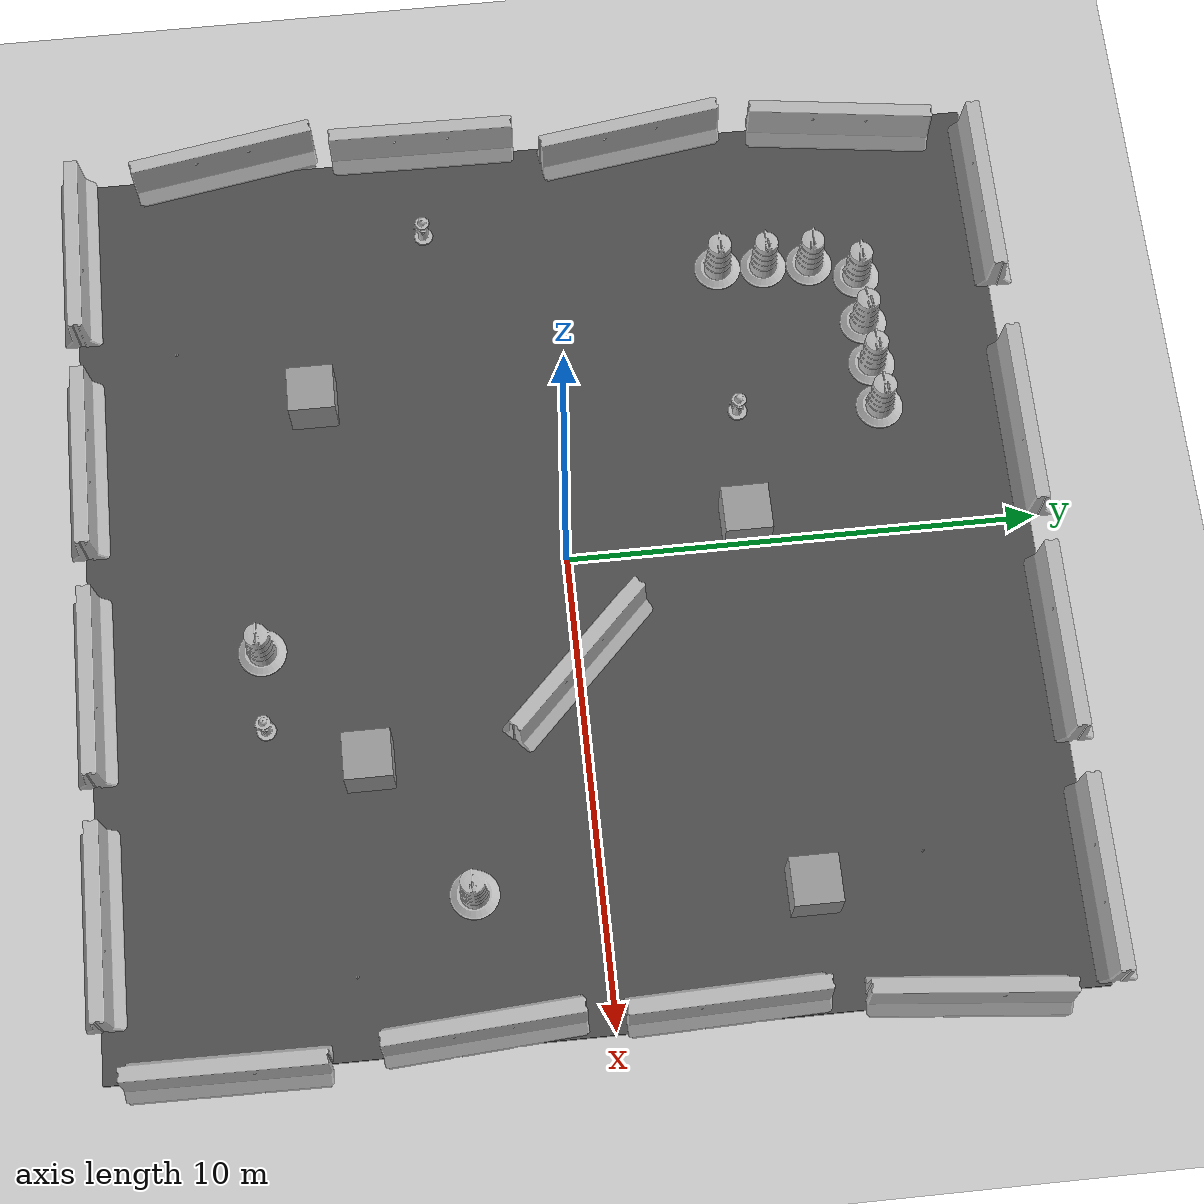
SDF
<sdf version="1.6">
 <world name="default">
  <light name="sun" type="directional">
   <pose>0 0 10 0 -0 0</pose>
   <diffuse>0.8 0.8 0.8 1</diffuse>
   <specular>0.2 0.2 0.2 1</specular>
   <attenuation>
    <range>1000</range>
    <constant>0.9</constant>
    <linear>0.01</linear>
    <quadratic>0.001</quadratic>
   </attenuation>
   <direction>-0.5 0.1 -0.9</direction>
  </light>
  <model name="ground_plane">
   <static>1</static>
   <link name="link">
    <collision name="collision">
     <geometry><plane><normal>0 0 1</normal><size>100 100</size></plane></geometry>
     <surface><friction><ode><mu>100</mu><mu2>50</mu2></ode></friction></surface>
    </collision>
    <visual name="visual">
     <cast_shadows>0</cast_shadows>
     <geometry><plane><normal>0 0 1</normal><size>100 100</size></plane></geometry>
     <material>
      <script><uri>file://media/materials/scripts/gazebo.material</uri><name>Gazebo/Grey</name></script>
     </material>
    </visual>
    <velocity_decay><linear>0</linear><angular>0</angular></velocity_decay>
   </link>
  </model>
  <physics name="default_physics" default="0" type="ode">
   <max_step_size>0.01</max_step_size>
   <real_time_factor>1</real_time_factor>
   <real_time_update_rate>100</real_time_update_rate>
  </physics>
  <scene><ambient>0.4 0.4 0.4 1</ambient><background>0.7 0.7 0.7 1</background><shadows>1</shadows></scene>
  <model name="jersey_barrier">
   <static>1</static>
   <link name="link">
    <visual name="visual">
     <geometry>
      <mesh><uri>model://jersey_barrier/meshes/jersey_barrier.dae</uri><scale>1 1 1</scale></mesh>
     </geometry>
    </visual>
    <collision name="upright">
     <pose>0 0 0.5715 0 -0 0</pose>
     <geometry><box><size>4.06542 0.3063 1.143</size></box></geometry>
    </collision>
    <collision name="base">
     <pose>0 0 0.032258 0 -0 0</pose>
     <geometry><box><size>4.06542 0.8107 0.064516</size></box></geometry>
    </collision>
    <collision name="base2">
     <pose>0 0 0.1 0 -0 0</pose>
     <geometry><box><size>4.06542 0.65 0.1</size></box></geometry>
    </collision>
    <collision name="base3">
     <pose>0 0 0.2 0 -0 0</pose>
     <geometry><box><size>4.06542 0.5 0.1</size></box></geometry>
    </collision>
    <collision name="left-angle">
     <pose>0 -0.224 0.2401 0.9 -0 0</pose>
     <geometry><box><size>4.06542 0.5 0.064516</size></box></geometry>
    </collision>
    <collision name="right-angle">
     <pose>0 0.224 0.2401 -0.9 0 0</pose>
     <geometry><box><size>4.06542 0.5 0.064516</size></box></geometry>
    </collision>
    <velocity_decay><linear>0</linear><angular>0</angular></velocity_decay>
   </link>
   <pose>-8 -10 0 0 -0 0</pose>
  </model>
  <model name="jersey_barrier_0">
   <static>1</static>
   <link name="link">
    <visual name="visual">
     <geometry>
      <mesh><uri>model://jersey_barrier/meshes/jersey_barrier.dae</uri><scale>1 1 1</scale></mesh>
     </geometry>
    </visual>
    <collision name="upright">
     <pose>0 0 0.5715 0 -0 0</pose>
     <geometry><box><size>4.06542 0.3063 1.143</size></box></geometry>
    </collision>
    <collision name="base">
     <pose>0 0 0.032258 0 -0 0</pose>
     <geometry><box><size>4.06542 0.8107 0.064516</size></box></geometry>
    </collision>
    <collision name="base2">
     <pose>0 0 0.1 0 -0 0</pose>
     <geometry><box><size>4.06542 0.65 0.1</size></box></geometry>
    </collision>
    <collision name="base3">
     <pose>0 0 0.2 0 -0 0</pose>
     <geometry><box><size>4.06542 0.5 0.1</size></box></geometry>
    </collision>
    <collision name="left-angle">
     <pose>0 -0.224 0.2401 0.9 -0 0</pose>
     <geometry><box><size>4.06542 0.5 0.064516</size></box></geometry>
    </collision>
    <collision name="right-angle">
     <pose>0 0.224 0.2401 -0.9 0 0</pose>
     <geometry><box><size>4.06542 0.5 0.064516</size></box></geometry>
    </collision>
    <velocity_decay><linear>0</linear><angular>0</angular></velocity_decay>
   </link>
   <pose>-3 -10 0 0 -0 0</pose>
  </model>
  <model name="jersey_barrier_1">
   <static>1</static>
   <link name="link">
    <visual name="visual">
     <geometry>
      <mesh><uri>model://jersey_barrier/meshes/jersey_barrier.dae</uri><scale>1 1 1</scale></mesh>
     </geometry>
    </visual>
    <collision name="upright">
     <pose>0 0 0.5715 0 -0 0</pose>
     <geometry><box><size>4.06542 0.3063 1.143</size></box></geometry>
    </collision>
    <collision name="base">
     <pose>0 0 0.032258 0 -0 0</pose>
     <geometry><box><size>4.06542 0.8107 0.064516</size></box></geometry>
    </collision>
    <collision name="base2">
     <pose>0 0 0.1 0 -0 0</pose>
     <geometry><box><size>4.06542 0.65 0.1</size></box></geometry>
    </collision>
    <collision name="base3">
     <pose>0 0 0.2 0 -0 0</pose>
     <geometry><box><size>4.06542 0.5 0.1</size></box></geometry>
    </collision>
    <collision name="left-angle">
     <pose>0 -0.224 0.2401 0.9 -0 0</pose>
     <geometry><box><size>4.06542 0.5 0.064516</size></box></geometry>
    </collision>
    <collision name="right-angle">
     <pose>0 0.224 0.2401 -0.9 0 0</pose>
     <geometry><box><size>4.06542 0.5 0.064516</size></box></geometry>
    </collision>
    <velocity_decay><linear>0</linear><angular>0</angular></velocity_decay>
   </link>
   <pose>2 -10 0 0 -0 0</pose>
  </model>
  <model name="jersey_barrier_2">
   <static>1</static>
   <link name="link">
    <visual name="visual">
     <geometry>
      <mesh><uri>model://jersey_barrier/meshes/jersey_barrier.dae</uri><scale>1 1 1</scale></mesh>
     </geometry>
    </visual>
    <collision name="upright">
     <pose>0 0 0.5715 0 -0 0</pose>
     <geometry><box><size>4.06542 0.3063 1.143</size></box></geometry>
    </collision>
    <collision name="base">
     <pose>0 0 0.032258 0 -0 0</pose>
     <geometry><box><size>4.06542 0.8107 0.064516</size></box></geometry>
    </collision>
    <collision name="base2">
     <pose>0 0 0.1 0 -0 0</pose>
     <geometry><box><size>4.06542 0.65 0.1</size></box></geometry>
    </collision>
    <collision name="base3">
     <pose>0 0 0.2 0 -0 0</pose>
     <geometry><box><size>4.06542 0.5 0.1</size></box></geometry>
    </collision>
    <collision name="left-angle">
     <pose>0 -0.224 0.2401 0.9 -0 0</pose>
     <geometry><box><size>4.06542 0.5 0.064516</size></box></geometry>
    </collision>
    <collision name="right-angle">
     <pose>0 0.224 0.2401 -0.9 0 0</pose>
     <geometry><box><size>4.06542 0.5 0.064516</size></box></geometry>
    </collision>
    <velocity_decay><linear>0</linear><angular>0</angular></velocity_decay>
   </link>
   <pose>7 -10 0 0 -0 0</pose>
  </model>
  <model name="jersey_barrier_3">
   <static>1</static>
   <link name="link">
    <visual name="visual">
     <geometry>
      <mesh><uri>model://jersey_barrier/meshes/jersey_barrier.dae</uri><scale>1 1 1</scale></mesh>
     </geometry>
    </visual>
    <collision name="upright">
     <pose>0 0 0.5715 0 -0 0</pose>
     <geometry><box><size>4.06542 0.3063 1.143</size></box></geometry>
    </collision>
    <collision name="base">
     <pose>0 0 0.032258 0 -0 0</pose>
     <geometry><box><size>4.06542 0.8107 0.064516</size></box></geometry>
    </collision>
    <collision name="base2">
     <pose>0 0 0.1 0 -0 0</pose>
     <geometry><box><size>4.06542 0.65 0.1</size></box></geometry>
    </collision>
    <collision name="base3">
     <pose>0 0 0.2 0 -0 0</pose>
     <geometry><box><size>4.06542 0.5 0.1</size></box></geometry>
    </collision>
    <collision name="left-angle">
     <pose>0 -0.224 0.2401 0.9 -0 0</pose>
     <geometry><box><size>4.06542 0.5 0.064516</size></box></geometry>
    </collision>
    <collision name="right-angle">
     <pose>0 0.224 0.2401 -0.9 0 0</pose>
     <geometry><box><size>4.06542 0.5 0.064516</size></box></geometry>
    </collision>
    <velocity_decay><linear>0</linear><angular>0</angular></velocity_decay>
   </link>
   <pose>-7.50675 10 0 0 -0 0</pose>
  </model>
  <model name="jersey_barrier_4">
   <static>1</static>
   <link name="link">
    <visual name="visual">
     <geometry>
      <mesh><uri>model://jersey_barrier/meshes/jersey_barrier.dae</uri><scale>1 1 1</scale></mesh>
     </geometry>
    </visual>
    <collision name="upright">
     <pose>0 0 0.5715 0 -0 0</pose>
     <geometry><box><size>4.06542 0.3063 1.143</size></box></geometry>
    </collision>
    <collision name="base">
     <pose>0 0 0.032258 0 -0 0</pose>
     <geometry><box><size>4.06542 0.8107 0.064516</size></box></geometry>
    </collision>
    <collision name="base2">
     <pose>0 0 0.1 0 -0 0</pose>
     <geometry><box><size>4.06542 0.65 0.1</size></box></geometry>
    </collision>
    <collision name="base3">
     <pose>0 0 0.2 0 -0 0</pose>
     <geometry><box><size>4.06542 0.5 0.1</size></box></geometry>
    </collision>
    <collision name="left-angle">
     <pose>0 -0.224 0.2401 0.9 -0 0</pose>
     <geometry><box><size>4.06542 0.5 0.064516</size></box></geometry>
    </collision>
    <collision name="right-angle">
     <pose>0 0.224 0.2401 -0.9 0 0</pose>
     <geometry><box><size>4.06542 0.5 0.064516</size></box></geometry>
    </collision>
    <velocity_decay><linear>0</linear><angular>0</angular></velocity_decay>
   </link>
   <pose>-2 10 0 0 -0 0</pose>
  </model>
  <model name="jersey_barrier_5">
   <static>1</static>
   <link name="link">
    <visual name="visual">
     <geometry>
      <mesh><uri>model://jersey_barrier/meshes/jersey_barrier.dae</uri><scale>1 1 1</scale></mesh>
     </geometry>
    </visual>
    <collision name="upright">
     <pose>0 0 0.5715 0 -0 0</pose>
     <geometry><box><size>4.06542 0.3063 1.143</size></box></geometry>
    </collision>
    <collision name="base">
     <pose>0 0 0.032258 0 -0 0</pose>
     <geometry><box><size>4.06542 0.8107 0.064516</size></box></geometry>
    </collision>
    <collision name="base2">
     <pose>0 0 0.1 0 -0 0</pose>
     <geometry><box><size>4.06542 0.65 0.1</size></box></geometry>
    </collision>
    <collision name="base3">
     <pose>0 0 0.2 0 -0 0</pose>
     <geometry><box><size>4.06542 0.5 0.1</size></box></geometry>
    </collision>
    <collision name="left-angle">
     <pose>0 -0.224 0.2401 0.9 -0 0</pose>
     <geometry><box><size>4.06542 0.5 0.064516</size></box></geometry>
    </collision>
    <collision name="right-angle">
     <pose>0 0.224 0.2401 -0.9 0 0</pose>
     <geometry><box><size>4.06542 0.5 0.064516</size></box></geometry>
    </collision>
    <velocity_decay><linear>0</linear><angular>0</angular></velocity_decay>
   </link>
   <pose>3 10 0 0 -0 0</pose>
  </model>
  <model name="jersey_barrier_6">
   <static>1</static>
   <link name="link">
    <visual name="visual">
     <geometry>
      <mesh><uri>model://jersey_barrier/meshes/jersey_barrier.dae</uri><scale>1 1 1</scale></mesh>
     </geometry>
    </visual>
    <collision name="upright">
     <pose>0 0 0.5715 0 -0 0</pose>
     <geometry><box><size>4.06542 0.3063 1.143</size></box></geometry>
    </collision>
    <collision name="base">
     <pose>0 0 0.032258 0 -0 0</pose>
     <geometry><box><size>4.06542 0.8107 0.064516</size></box></geometry>
    </collision>
    <collision name="base2">
     <pose>0 0 0.1 0 -0 0</pose>
     <geometry><box><size>4.06542 0.65 0.1</size></box></geometry>
    </collision>
    <collision name="base3">
     <pose>0 0 0.2 0 -0 0</pose>
     <geometry><box><size>4.06542 0.5 0.1</size></box></geometry>
    </collision>
    <collision name="left-angle">
     <pose>0 -0.224 0.2401 0.9 -0 0</pose>
     <geometry><box><size>4.06542 0.5 0.064516</size></box></geometry>
    </collision>
    <collision name="right-angle">
     <pose>0 0.224 0.2401 -0.9 0 0</pose>
     <geometry><box><size>4.06542 0.5 0.064516</size></box></geometry>
    </collision>
    <velocity_decay><linear>0</linear><angular>0</angular></velocity_decay>
   </link>
   <pose>8 10 0 0 -0 0</pose>
  </model>
  <model name="jersey_barrier_7">
   <static>1</static>
   <link name="link">
    <visual name="visual">
     <geometry>
      <mesh><uri>model://jersey_barrier/meshes/jersey_barrier.dae</uri><scale>1 1 1</scale></mesh>
     </geometry>
    </visual>
    <collision name="upright">
     <pose>0 0 0.5715 0 -0 0</pose>
     <geometry><box><size>4.06542 0.3063 1.143</size></box></geometry>
    </collision>
    <collision name="base">
     <pose>0 0 0.032258 0 -0 0</pose>
     <geometry><box><size>4.06542 0.8107 0.064516</size></box></geometry>
    </collision>
    <collision name="base2">
     <pose>0 0 0.1 0 -0 0</pose>
     <geometry><box><size>4.06542 0.65 0.1</size></box></geometry>
    </collision>
    <collision name="base3">
     <pose>0 0 0.2 0 -0 0</pose>
     <geometry><box><size>4.06542 0.5 0.1</size></box></geometry>
    </collision>
    <collision name="left-angle">
     <pose>0 -0.224 0.2401 0.9 -0 0</pose>
     <geometry><box><size>4.06542 0.5 0.064516</size></box></geometry>
    </collision>
    <collision name="right-angle">
     <pose>0 0.224 0.2401 -0.9 0 0</pose>
     <geometry><box><size>4.06542 0.5 0.064516</size></box></geometry>
    </collision>
    <velocity_decay><linear>0</linear><angular>0</angular></velocity_decay>
   </link>
   <pose>9.74902 -2.57759 0 0 -0 1.64</pose>
  </model>
  <model name="jersey_barrier_8">
   <static>1</static>
   <link name="link">
    <visual name="visual">
     <geometry>
      <mesh><uri>model://jersey_barrier/meshes/jersey_barrier.dae</uri><scale>1 1 1</scale></mesh>
     </geometry>
    </visual>
    <collision name="upright">
     <pose>0 0 0.5715 0 -0 0</pose>
     <geometry><box><size>4.06542 0.3063 1.143</size></box></geometry>
    </collision>
    <collision name="base">
     <pose>0 0 0.032258 0 -0 0</pose>
     <geometry><box><size>4.06542 0.8107 0.064516</size></box></geometry>
    </collision>
    <collision name="base2">
     <pose>0 0 0.1 0 -0 0</pose>
     <geometry><box><size>4.06542 0.65 0.1</size></box></geometry>
    </collision>
    <collision name="base3">
     <pose>0 0 0.2 0 -0 0</pose>
     <geometry><box><size>4.06542 0.5 0.1</size></box></geometry>
    </collision>
    <collision name="left-angle">
     <pose>0 -0.224 0.2401 0.9 -0 0</pose>
     <geometry><box><size>4.06542 0.5 0.064516</size></box></geometry>
    </collision>
    <collision name="right-angle">
     <pose>0 0.224 0.2401 -0.9 0 0</pose>
     <geometry><box><size>4.06542 0.5 0.064516</size></box></geometry>
    </collision>
    <velocity_decay><linear>0</linear><angular>0</angular></velocity_decay>
   </link>
   <pose>9.70141 2.24369 0 0 -0 1.6</pose>
  </model>
  <model name="jersey_barrier_9">
   <static>1</static>
   <link name="link">
    <visual name="visual">
     <geometry>
      <mesh><uri>model://jersey_barrier/meshes/jersey_barrier.dae</uri><scale>1 1 1</scale></mesh>
     </geometry>
    </visual>
    <collision name="upright">
     <pose>0 0 0.5715 0 -0 0</pose>
     <geometry><box><size>4.06542 0.3063 1.143</size></box></geometry>
    </collision>
    <collision name="base">
     <pose>0 0 0.032258 0 -0 0</pose>
     <geometry><box><size>4.06542 0.8107 0.064516</size></box></geometry>
    </collision>
    <collision name="base2">
     <pose>0 0 0.1 0 -0 0</pose>
     <geometry><box><size>4.06542 0.65 0.1</size></box></geometry>
    </collision>
    <collision name="base3">
     <pose>0 0 0.2 0 -0 0</pose>
     <geometry><box><size>4.06542 0.5 0.1</size></box></geometry>
    </collision>
    <collision name="left-angle">
     <pose>0 -0.224 0.2401 0.9 -0 0</pose>
     <geometry><box><size>4.06542 0.5 0.064516</size></box></geometry>
    </collision>
    <collision name="right-angle">
     <pose>0 0.224 0.2401 -0.9 0 0</pose>
     <geometry><box><size>4.06542 0.5 0.064516</size></box></geometry>
    </collision>
    <velocity_decay><linear>0</linear><angular>0</angular></velocity_decay>
   </link>
   <pose>-10.0607 -6.69856 0 0 0 -1.4</pose>
  </model>
  <model name="jersey_barrier_10">
   <static>1</static>
   <link name="link">
    <visual name="visual">
     <geometry>
      <mesh><uri>model://jersey_barrier/meshes/jersey_barrier.dae</uri><scale>1 1 1</scale></mesh>
     </geometry>
    </visual>
    <collision name="upright">
     <pose>0 0 0.5715 0 -0 0</pose>
     <geometry><box><size>4.06542 0.3063 1.143</size></box></geometry>
    </collision>
    <collision name="base">
     <pose>0 0 0.032258 0 -0 0</pose>
     <geometry><box><size>4.06542 0.8107 0.064516</size></box></geometry>
    </collision>
    <collision name="base2">
     <pose>0 0 0.1 0 -0 0</pose>
     <geometry><box><size>4.06542 0.65 0.1</size></box></geometry>
    </collision>
    <collision name="base3">
     <pose>0 0 0.2 0 -0 0</pose>
     <geometry><box><size>4.06542 0.5 0.1</size></box></geometry>
    </collision>
    <collision name="left-angle">
     <pose>0 -0.224 0.2401 0.9 -0 0</pose>
     <geometry><box><size>4.06542 0.5 0.064516</size></box></geometry>
    </collision>
    <collision name="right-angle">
     <pose>0 0.224 0.2401 -0.9 0 0</pose>
     <geometry><box><size>4.06542 0.5 0.064516</size></box></geometry>
    </collision>
    <velocity_decay><linear>0</linear><angular>0</angular></velocity_decay>
   </link>
   <pose>-10.0774 -2.27159 0 0 -0 1.56</pose>
  </model>
  <model name="jersey_barrier_11">
   <static>1</static>
   <link name="link">
    <visual name="visual">
     <geometry>
      <mesh><uri>model://jersey_barrier/meshes/jersey_barrier.dae</uri><scale>1 1 1</scale></mesh>
     </geometry>
    </visual>
    <collision name="upright">
     <pose>0 0 0.5715 0 -0 0</pose>
     <geometry><box><size>4.06542 0.3063 1.143</size></box></geometry>
    </collision>
    <collision name="base">
     <pose>0 0 0.032258 0 -0 0</pose>
     <geometry><box><size>4.06542 0.8107 0.064516</size></box></geometry>
    </collision>
    <collision name="base2">
     <pose>0 0 0.1 0 -0 0</pose>
     <geometry><box><size>4.06542 0.65 0.1</size></box></geometry>
    </collision>
    <collision name="base3">
     <pose>0 0 0.2 0 -0 0</pose>
     <geometry><box><size>4.06542 0.5 0.1</size></box></geometry>
    </collision>
    <collision name="left-angle">
     <pose>0 -0.224 0.2401 0.9 -0 0</pose>
     <geometry><box><size>4.06542 0.5 0.064516</size></box></geometry>
    </collision>
    <collision name="right-angle">
     <pose>0 0.224 0.2401 -0.9 0 0</pose>
     <geometry><box><size>4.06542 0.5 0.064516</size></box></geometry>
    </collision>
    <velocity_decay><linear>0</linear><angular>0</angular></velocity_decay>
   </link>
   <pose>-9.77013 2.34791 0 0 -0 1.72</pose>
  </model>
  <model name="jersey_barrier_12">
   <static>1</static>
   <link name="link">
    <visual name="visual">
     <geometry>
      <mesh><uri>model://jersey_barrier/meshes/jersey_barrier.dae</uri><scale>1 1 1</scale></mesh>
     </geometry>
    </visual>
    <collision name="upright">
     <pose>0 0 0.5715 0 -0 0</pose>
     <geometry><box><size>4.06542 0.3063 1.143</size></box></geometry>
    </collision>
    <collision name="base">
     <pose>0 0 0.032258 0 -0 0</pose>
     <geometry><box><size>4.06542 0.8107 0.064516</size></box></geometry>
    </collision>
    <collision name="base2">
     <pose>0 0 0.1 0 -0 0</pose>
     <geometry><box><size>4.06542 0.65 0.1</size></box></geometry>
    </collision>
    <collision name="base3">
     <pose>0 0 0.2 0 -0 0</pose>
     <geometry><box><size>4.06542 0.5 0.1</size></box></geometry>
    </collision>
    <collision name="left-angle">
     <pose>0 -0.224 0.2401 0.9 -0 0</pose>
     <geometry><box><size>4.06542 0.5 0.064516</size></box></geometry>
    </collision>
    <collision name="right-angle">
     <pose>0 0.224 0.2401 -0.9 0 0</pose>
     <geometry><box><size>4.06542 0.5 0.064516</size></box></geometry>
    </collision>
    <velocity_decay><linear>0</linear><angular>0</angular></velocity_decay>
   </link>
   <pose>10.0879 -7.62159 0 0 -0 1.56</pose>
  </model>
  <model name="jersey_barrier_13">
   <static>1</static>
   <link name="link">
    <visual name="visual">
     <geometry>
      <mesh><uri>model://jersey_barrier/meshes/jersey_barrier.dae</uri><scale>1 1 1</scale></mesh>
     </geometry>
    </visual>
    <collision name="upright">
     <pose>0 0 0.5715 0 -0 0</pose>
     <geometry><box><size>4.06542 0.3063 1.143</size></box></geometry>
    </collision>
    <collision name="base">
     <pose>0 0 0.032258 0 -0 0</pose>
     <geometry><box><size>4.06542 0.8107 0.064516</size></box></geometry>
    </collision>
    <collision name="base2">
     <pose>0 0 0.1 0 -0 0</pose>
     <geometry><box><size>4.06542 0.65 0.1</size></box></geometry>
    </collision>
    <collision name="base3">
     <pose>0 0 0.2 0 -0 0</pose>
     <geometry><box><size>4.06542 0.5 0.1</size></box></geometry>
    </collision>
    <collision name="left-angle">
     <pose>0 -0.224 0.2401 0.9 -0 0</pose>
     <geometry><box><size>4.06542 0.5 0.064516</size></box></geometry>
    </collision>
    <collision name="right-angle">
     <pose>0 0.224 0.2401 -0.9 0 0</pose>
     <geometry><box><size>4.06542 0.5 0.064516</size></box></geometry>
    </collision>
    <velocity_decay><linear>0</linear><angular>0</angular></velocity_decay>
   </link>
   <pose>10 7 0 0 -0 1.48</pose>
  </model>
  <model name="jersey_barrier_14">
   <static>1</static>
   <link name="link">
    <visual name="visual">
     <geometry>
      <mesh><uri>model://jersey_barrier/meshes/jersey_barrier.dae</uri><scale>1 1 1</scale></mesh>
     </geometry>
    </visual>
    <collision name="upright">
     <pose>0 0 0.5715 0 -0 0</pose>
     <geometry><box><size>4.06542 0.3063 1.143</size></box></geometry>
    </collision>
    <collision name="base">
     <pose>0 0 0.032258 0 -0 0</pose>
     <geometry><box><size>4.06542 0.8107 0.064516</size></box></geometry>
    </collision>
    <collision name="base2">
     <pose>0 0 0.1 0 -0 0</pose>
     <geometry><box><size>4.06542 0.65 0.1</size></box></geometry>
    </collision>
    <collision name="base3">
     <pose>0 0 0.2 0 -0 0</pose>
     <geometry><box><size>4.06542 0.5 0.1</size></box></geometry>
    </collision>
    <collision name="left-angle">
     <pose>0 -0.224 0.2401 0.9 -0 0</pose>
     <geometry><box><size>4.06542 0.5 0.064516</size></box></geometry>
    </collision>
    <collision name="right-angle">
     <pose>0 0.224 0.2401 -0.9 0 0</pose>
     <geometry><box><size>4.06542 0.5 0.064516</size></box></geometry>
    </collision>
    <velocity_decay><linear>0</linear><angular>0</angular></velocity_decay>
   </link>
   <pose>-9.64482 7.05946 0 0 -0 1.44</pose>
  </model>
  <model name="fire_hydrant">
   <static>1</static>
   <link name="link">
    <collision name="collision">
     <geometry><mesh><uri>model://fire_hydrant/meshes/fire_hydrant.dae</uri><scale>1 1 1</scale></mesh></geometry>
    </collision>
    <visual name="visual">
     <geometry><mesh><uri>model://fire_hydrant/meshes/fire_hydrant.dae</uri><scale>1 1 1</scale></mesh></geometry>
    </visual>
    <velocity_decay><linear>0</linear><angular>0</angular></velocity_decay>
   </link>
   <pose>3.18024 -6.51118 0 0 -0 0</pose>
  </model>
  <model name="fire_hydrant_0">
   <static>1</static>
   <link name="link">
    <collision name="collision">
     <geometry><mesh><uri>model://fire_hydrant/meshes/fire_hydrant.dae</uri><scale>1 1 1</scale></mesh></geometry>
    </collision>
    <visual name="visual">
     <geometry><mesh><uri>model://fire_hydrant/meshes/fire_hydrant.dae</uri><scale>1 1 1</scale></mesh></geometry>
    </visual>
    <velocity_decay><linear>0</linear><angular>0</angular></velocity_decay>
   </link>
   <pose>-3 4 0 0 -0 0</pose>
  </model>
  <model name="fire_hydrant_1">
   <static>1</static>
   <link name="link">
    <collision name="collision">
     <geometry><mesh><uri>model://fire_hydrant/meshes/fire_hydrant.dae</uri><scale>1 1 1</scale></mesh></geometry>
    </collision>
    <visual name="visual">
     <geometry><mesh><uri>model://fire_hydrant/meshes/fire_hydrant.dae</uri><scale>1 1 1</scale></mesh></geometry>
    </visual>
    <velocity_decay><linear>0</linear><angular>0</angular></velocity_decay>
   </link>
   <pose>-7.90686 -2.41363 0 0 -0 0</pose>
  </model>
  <model name="jersey_barrier_15">
   <static>1</static>
   <link name="link">
    <visual name="visual">
     <geometry>
      <mesh><uri>model://jersey_barrier/meshes/jersey_barrier.dae</uri><scale>1 1 1</scale></mesh>
     </geometry>
    </visual>
    <collision name="upright">
     <pose>0 0 0.5715 0 -0 0</pose>
     <geometry><box><size>4.06542 0.3063 1.143</size></box></geometry>
    </collision>
    <collision name="base">
     <pose>0 0 0.032258 0 -0 0</pose>
     <geometry><box><size>4.06542 0.8107 0.064516</size></box></geometry>
    </collision>
    <collision name="base2">
     <pose>0 0 0.1 0 -0 0</pose>
     <geometry><box><size>4.06542 0.65 0.1</size></box></geometry>
    </collision>
    <collision name="base3">
     <pose>0 0 0.2 0 -0 0</pose>
     <geometry><box><size>4.06542 0.5 0.1</size></box></geometry>
    </collision>
    <collision name="left-angle">
     <pose>0 -0.224 0.2401 0.9 -0 0</pose>
     <geometry><box><size>4.06542 0.5 0.064516</size></box></geometry>
    </collision>
    <collision name="right-angle">
     <pose>0 0.224 0.2401 -0.9 0 0</pose>
     <geometry><box><size>4.06542 0.5 0.064516</size></box></geometry>
    </collision>
    <velocity_decay><linear>0</linear><angular>0</angular></velocity_decay>
   </link>
   <pose>2.45495 0 0 0 -0 2.36</pose>
  </model>
  <model name="Construction Cone">
   <link name="link">
    <collision name="collision">
     <geometry>
      <mesh><scale>1 1 1</scale><uri>model://construction_cone/meshes/construction_cone.dae</uri></mesh>
     </geometry>
    </collision>
    <visual name="visual">
     <geometry>
      <mesh><scale>1 1 1</scale><uri>model://construction_cone/meshes/construction_cone.dae</uri></mesh>
     </geometry>
    </visual>
    <velocity_decay><linear>0</linear><angular>0</angular></velocity_decay>
    <inertial>
     <inertia><ixx>1</ixx><ixy>0</ixy><ixz>0</ixz><iyy>1</iyy><iyz>0</iyz><izz>1</izz></inertia>
     <mass>1</mass>
    </inertial>
   </link>
   <pose>-5.59121 -8 0.049152 0.003056 -0.003165 -5.1e-05</pose>
   <static>0</static>
  </model>
  <model name="Construction Barrel">
   <link name="link">
    <inertial>
     <pose>0 0 0.4 0 -0 0</pose>
     <mass>500</mass>
     <inertia><ixx>51.2096</ixx><iyy>51.2096</iyy><izz>25</izz><ixy>0</ixy><ixz>0</ixz><iyz>0</iyz></inertia>
    </inertial>
    <collision name="collision">
     <geometry>
      <mesh><uri>model://construction_barrel/meshes/construction_barrel.dae</uri><scale>1 1 1</scale></mesh>
     </geometry>
    </collision>
    <visual name="visual">
     <geometry>
      <mesh><uri>model://construction_barrel/meshes/construction_barrel.dae</uri><scale>1 1 1</scale></mesh>
     </geometry>
    </visual>
    <velocity_decay><linear>0</linear><angular>0</angular></velocity_decay>
   </link>
   <pose>7.00009 -2.54624 0.049899 -0.000198 -0.00038 0.000259</pose>
   <static>0</static>
  </model>
  <model name="Construction Cone_0">
   <link name="link">
    <collision name="collision">
     <geometry>
      <mesh><scale>1 1 1</scale><uri>model://construction_cone/meshes/construction_cone.dae</uri></mesh>
     </geometry>
    </collision>
    <visual name="visual">
     <geometry>
      <mesh><scale>1 1 1</scale><uri>model://construction_cone/meshes/construction_cone.dae</uri></mesh>
     </geometry>
    </visual>
    <velocity_decay><linear>0</linear><angular>0</angular></velocity_decay>
    <inertial>
     <inertia><ixx>1</ixx><ixy>0</ixy><ixz>0</ixz><iyy>1</iyy><iyz>0</iyz><izz>1</izz></inertia>
     <mass>1</mass>
    </inertial>
   </link>
   <pose>6.99557 6.55903 0.049369 0.00601 -0.009792 0.608859</pose>
   <static>0</static>
  </model>
  <model name="Construction Barrel_0">
   <link name="link">
    <inertial>
     <pose>0 0 0.4 0 -0 0</pose>
     <mass>500</mass>
     <inertia><ixx>51.2096</ixx><iyy>51.2096</iyy><izz>25</izz><ixy>0</ixy><ixz>0</ixz><iyz>0</iyz></inertia>
    </inertial>
    <collision name="collision">
     <geometry>
      <mesh><uri>model://construction_barrel/meshes/construction_barrel.dae</uri><scale>1 1 1</scale></mesh>
     </geometry>
    </collision>
    <visual name="visual">
     <geometry>
      <mesh><uri>model://construction_barrel/meshes/construction_barrel.dae</uri><scale>1 1 1</scale></mesh>
     </geometry>
    </visual>
    <velocity_decay><linear>0</linear><angular>0</angular></velocity_decay>
   </link>
   <pose>1.45181 -6.51118 0.049876 0.000489 -2e-06 -0.000106</pose>
   <static>0</static>
  </model>
  <model name="asphalt_plane">
   <static>1</static>
   <link name="link">
    <collision name="collision"><geometry><box><size>20 20 0.1</size></box></geometry></collision>
    <visual name="visual">
     <cast_shadows>0</cast_shadows>
     <geometry><box><size>20 20 0.1</size></box></geometry>
     <material>
      <script>
       <uri>model://asphalt_plane/materials/scripts</uri>
       <uri>model://asphalt_plane/materials/textures</uri>
       <name>vrc/asphalt</name>
      </script>
     </material>
    </visual>
    <velocity_decay><linear>0</linear><angular>0</angular></velocity_decay>
   </link>
   <pose>0.076733 -0.110379 0 0 -0 0</pose>
  </model>
  <model name="Construction Barrel_1">
   <link name="link">
    <inertial>
     <pose>0 0 0.4 0 -0 0</pose>
     <mass>500</mass>
     <inertia><ixx>51.2096</ixx><iyy>51.2096</iyy><izz>25</izz><ixy>0</ixy><ixz>0</ixz><iyz>0</iyz></inertia>
    </inertial>
    <collision name="collision">
     <geometry>
      <mesh><uri>model://construction_barrel/meshes/construction_barrel.dae</uri><scale>1 1 1</scale></mesh>
     </geometry>
    </collision>
    <visual name="visual">
     <geometry>
      <mesh><uri>model://construction_barrel/meshes/construction_barrel.dae</uri><scale>1 1 1</scale></mesh>
     </geometry>
    </visual>
    <velocity_decay><linear>0</linear><angular>0</angular></velocity_decay>
   </link>
   <pose>-6.5046 3.98287 0.049904 -8.9e-05 -0.000399 -0.00951</pose>
   <static>0</static>
  </model>
  <model name="Construction Barrel_2">
   <link name="link">
    <inertial>
     <pose>0 0 0.4 0 -0 0</pose>
     <mass>500</mass>
     <inertia><ixx>51.2096</ixx><iyy>51.2096</iyy><izz>25</izz><ixy>0</ixy><ixz>0</ixz><iyz>0</iyz></inertia>
    </inertial>
    <collision name="collision">
     <geometry>
      <mesh><uri>model://construction_barrel/meshes/construction_barrel.dae</uri><scale>1 1 1</scale></mesh>
     </geometry>
    </collision>
    <visual name="visual">
     <geometry>
      <mesh><uri>model://construction_barrel/meshes/construction_barrel.dae</uri><scale>1 1 1</scale></mesh>
     </geometry>
    </visual>
    <velocity_decay><linear>0</linear><angular>0</angular></velocity_decay>
   </link>
   <pose>-6.45061 4.9965 0.049896 0.000438 -1.7e-05 0.064866</pose>
   <static>0</static>
  </model>
  <model name="Construction Barrel_3">
   <link name="link">
    <inertial>
     <pose>0 0 0.4 0 -0 0</pose>
     <mass>500</mass>
     <inertia><ixx>51.2096</ixx><iyy>51.2096</iyy><izz>25</izz><ixy>0</ixy><ixz>0</ixz><iyz>0</iyz></inertia>
    </inertial>
    <collision name="collision">
     <geometry>
      <mesh><uri>model://construction_barrel/meshes/construction_barrel.dae</uri><scale>1 1 1</scale></mesh>
     </geometry>
    </collision>
    <visual name="visual">
     <geometry>
      <mesh><uri>model://construction_barrel/meshes/construction_barrel.dae</uri><scale>1 1 1</scale></mesh>
     </geometry>
    </visual>
    <velocity_decay><linear>0</linear><angular>0</angular></velocity_decay>
   </link>
   <pose>-6.40169 6.01123 0.049891 0.000449 -1.4e-05 -0.120775</pose>
   <static>0</static>
  </model>
  <model name="Construction Barrel_4">
   <link name="link">
    <inertial>
     <pose>0 0 0.4 0 -0 0</pose>
     <mass>500</mass>
     <inertia><ixx>51.2096</ixx><iyy>51.2096</iyy><izz>25</izz><ixy>0</ixy><ixz>0</ixz><iyz>0</iyz></inertia>
    </inertial>
    <collision name="collision">
     <geometry>
      <mesh><uri>model://construction_barrel/meshes/construction_barrel.dae</uri><scale>1 1 1</scale></mesh>
     </geometry>
    </collision>
    <visual name="visual">
     <geometry>
      <mesh><uri>model://construction_barrel/meshes/construction_barrel.dae</uri><scale>1 1 1</scale></mesh>
     </geometry>
    </visual>
    <velocity_decay><linear>0</linear><angular>0</angular></velocity_decay>
   </link>
   <pose>-6.00616 7.00904 0.049885 -0.000114 -0.00045 -0.049506</pose>
   <static>0</static>
  </model>
  <model name="Construction Barrel_5">
   <link name="link">
    <inertial>
     <pose>0 0 0.4 0 -0 0</pose>
     <mass>500</mass>
     <inertia><ixx>51.2096</ixx><iyy>51.2096</iyy><izz>25</izz><ixy>0</ixy><ixz>0</ixz><iyz>0</iyz></inertia>
    </inertial>
    <collision name="collision">
     <geometry>
      <mesh><uri>model://construction_barrel/meshes/construction_barrel.dae</uri><scale>1 1 1</scale></mesh>
     </geometry>
    </collision>
    <visual name="visual">
     <geometry>
      <mesh><uri>model://construction_barrel/meshes/construction_barrel.dae</uri><scale>1 1 1</scale></mesh>
     </geometry>
    </visual>
    <velocity_decay><linear>0</linear><angular>0</angular></velocity_decay>
   </link>
   <pose>-4.87563 7.00814 0.049888 1e-06 -0.000441 0.146249</pose>
   <static>0</static>
  </model>
  <model name="Construction Barrel_6">
   <link name="link">
    <inertial>
     <pose>0 0 0.4 0 -0 0</pose>
     <mass>500</mass>
     <inertia><ixx>51.2096</ixx><iyy>51.2096</iyy><izz>25</izz><ixy>0</ixy><ixz>0</ixz><iyz>0</iyz></inertia>
    </inertial>
    <collision name="collision">
     <geometry>
      <mesh><uri>model://construction_barrel/meshes/construction_barrel.dae</uri><scale>1 1 1</scale></mesh>
     </geometry>
    </collision>
    <visual name="visual">
     <geometry>
      <mesh><uri>model://construction_barrel/meshes/construction_barrel.dae</uri><scale>1 1 1</scale></mesh>
     </geometry>
    </visual>
    <velocity_decay><linear>0</linear><angular>0</angular></velocity_decay>
   </link>
   <pose>-3.8604 7.04848 0.049917 -0.000164 -0.000339 0.031474</pose>
   <static>0</static>
  </model>
  <model name="Construction Barrel_7">
   <link name="link">
    <inertial>
     <pose>0 0 0.4 0 -0 0</pose>
     <mass>500</mass>
     <inertia><ixx>51.2096</ixx><iyy>51.2096</iyy><izz>25</izz><ixy>0</ixy><ixz>0</ixz><iyz>0</iyz></inertia>
    </inertial>
    <collision name="collision">
     <geometry>
      <mesh><uri>model://construction_barrel/meshes/construction_barrel.dae</uri><scale>1 1 1</scale></mesh>
     </geometry>
    </collision>
    <visual name="visual">
     <geometry>
      <mesh><uri>model://construction_barrel/meshes/construction_barrel.dae</uri><scale>1 1 1</scale></mesh>
     </geometry>
    </visual>
    <velocity_decay><linear>0</linear><angular>0</angular></velocity_decay>
   </link>
   <pose>-2.84341 7.07603 0.049907 0.000404 -2.4e-05 0.070421</pose>
   <static>0</static>
  </model>
  <model name="Construction Cone_1">
   <link name="link">
    <collision name="collision">
     <geometry>
      <mesh><scale>1 1 1</scale><uri>model://construction_cone/meshes/construction_cone.dae</uri></mesh>
     </geometry>
    </collision>
    <visual name="visual">
     <geometry>
      <mesh><scale>1 1 1</scale><uri>model://construction_cone/meshes/construction_cone.dae</uri></mesh>
     </geometry>
    </visual>
    <velocity_decay><linear>0</linear><angular>0</angular></velocity_decay>
    <inertial>
     <inertia><ixx>1</ixx><ixy>0</ixy><ixz>0</ixz><iyy>1</iyy><iyz>0</iyz><izz>1</izz></inertia>
     <mass>1</mass>
    </inertial>
   </link>
   <pose>8.42887 -5 0.049152 0.003056 -0.003165 -5.1e-05</pose>
   <static>0</static>
  </model>
  <gravity>0 0 -9.8</gravity>
  <magnetic_field>6e-06 2.3e-05 -4.2e-05</magnetic_field>
  <atmosphere type="adiabatic"/>
  <spherical_coordinates>
   <surface_model>EARTH_WGS84</surface_model>
   <latitude_deg>0</latitude_deg>
   <longitude_deg>0</longitude_deg>
   <elevation>0</elevation>
   <heading_deg>0</heading_deg>
  </spherical_coordinates>
  <model name="unit_box_0">
   <pose>-4.06563 -5.0812 0.549798 0.000404 -1e-06 -9e-06</pose>
   <link name="link">
    <inertial>
     <mass>1</mass>
     <inertia>
      <ixx>0.166667</ixx>
      <ixy>0</ixy>
      <ixz>0</ixz>
      <iyy>0.166667</iyy>
      <iyz>0</iyz>
      <izz>0.166667</izz>
     </inertia>
    </inertial>
    <collision name="collision"><geometry><box><size>1 1 1</size></box></geometry></collision>
    <visual name="visual">
     <geometry><box><size>1 1 1</size></box></geometry>
     <material>
      <script><name>Gazebo/Grey</name><uri>file://media/materials/scripts/gazebo.material</uri></script>
     </material>
    </visual>
   </link>
  </model>
  <model name="unit_box_1">
   <pose>4.13186 -4.44474 0.549798 0.000404 -1e-06 -9e-06</pose>
   <link name="link">
    <inertial>
     <mass>1</mass>
     <inertia>
      <ixx>0.166667</ixx>
      <ixy>0</ixy>
      <ixz>0</ixz>
      <iyy>0.166667</iyy>
      <iyz>0</iyz>
      <izz>0.166667</izz>
     </inertia>
    </inertial>
    <collision name="collision"><geometry><box><size>1 1 1</size></box></geometry></collision>
    <visual name="visual">
     <geometry><box><size>1 1 1</size></box></geometry>
     <material>
      <script><name>Gazebo/Grey</name><uri>file://media/materials/scripts/gazebo.material</uri></script>
     </material>
    </visual>
   </link>
  </model>
  <model name="unit_box_2">
   <pose>7.58848 4.21421 0.549798 0.000404 -1e-06 -9e-06</pose>
   <link name="link">
    <inertial>
     <mass>1</mass>
     <inertia>
      <ixx>0.166667</ixx>
      <ixy>0</ixy>
      <ixz>0</ixz>
      <iyy>0.166667</iyy>
      <iyz>0</iyz>
      <izz>0.166667</izz>
     </inertia>
    </inertial>
    <collision name="collision"><geometry><box><size>1 1 1</size></box></geometry></collision>
    <visual name="visual">
     <geometry><box><size>1 1 1</size></box></geometry>
     <material>
      <script><name>Gazebo/Grey</name><uri>file://media/materials/scripts/gazebo.material</uri></script>
     </material>
    </visual>
   </link>
  </model>
  <model name="unit_box_3">
   <pose>-0.415084 3.82858 0.549798 0.000404 -1e-06 -1.1e-05</pose>
   <link name="link">
    <inertial>
     <mass>1</mass>
     <inertia>
      <ixx>0.166667</ixx>
      <ixy>0</ixy>
      <ixz>0</ixz>
      <iyy>0.166667</iyy>
      <iyz>0</iyz>
      <izz>0.166667</izz>
     </inertia>
    </inertial>
    <collision name="collision"><geometry><box><size>1 1 1</size></box></geometry></collision>
    <visual name="visual">
     <geometry><box><size>1 1 1</size></box></geometry>
     <material>
      <script><name>Gazebo/Grey</name><uri>file://media/materials/scripts/gazebo.material</uri></script>
     </material>
    </visual>
   </link>
  </model>
 </world>
</sdf>
